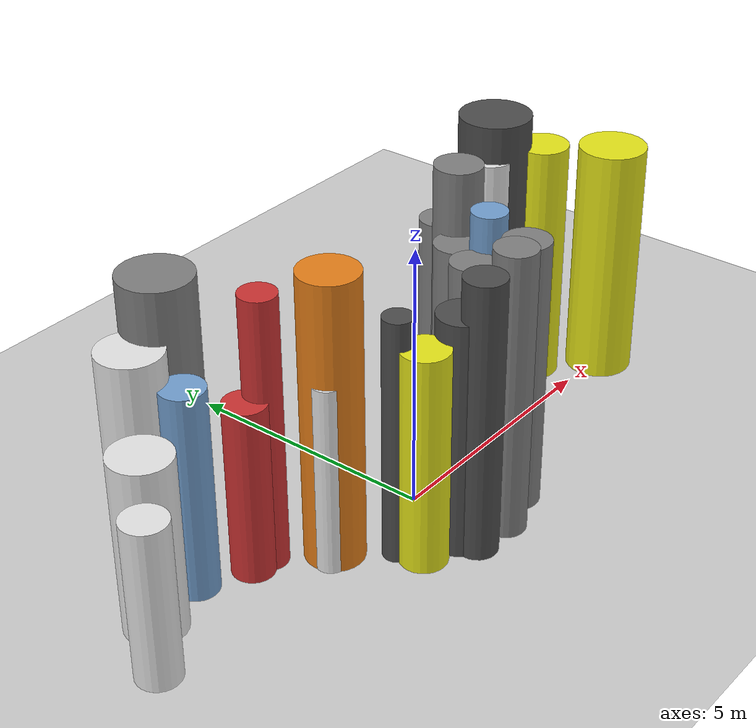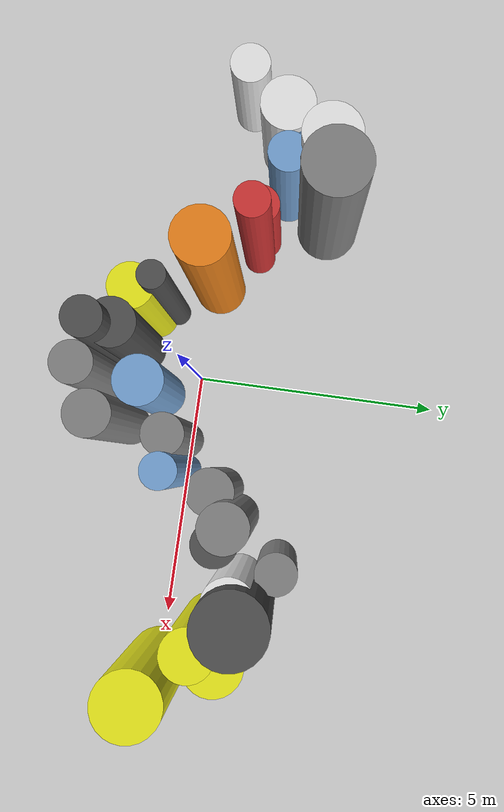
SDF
<?xml version='1.0'?>
<sdf version='1.6'>
  <world name='routeA_rl_v1__dense_recovery__rl_test__s_turn_multi_obstacle__000119'>
    <!-- Sun light -->
    <light name='sun' type='directional'>
      <cast_shadows>1</cast_shadows>
      <pose>0 0 10 0 0 0</pose>
      <diffuse>0.8 0.8 0.8 1</diffuse>
      <specular>0.2 0.2 0.2 1</specular>
      <attenuation>
        <range>1000</range>
        <constant>0.9</constant>
        <linear>0.01</linear>
        <quadratic>0.001</quadratic>
      </attenuation>
      <direction>-0.5 0.1 -0.9</direction>
    </light>

    <!-- Ground plane -->
    <model name='ground_plane'>
      <static>1</static>
      <link name='link'>
        <collision name='collision'>
          <geometry>
            <plane>
              <normal>0 0 1</normal>
              <size>100 100</size>
            </plane>
          </geometry>
          <surface>
            <contact>
              <collide_bitmask>65535</collide_bitmask>
              <ode/>
            </contact>
            <friction>
              <ode>
                <mu>100</mu>
                <mu2>50</mu2>
              </ode>
              <torsional><ode/></torsional>
            </friction>
            <bounce/>
          </surface>
          <max_contacts>10</max_contacts>
        </collision>
        <visual name='visual'>
          <cast_shadows>0</cast_shadows>
          <geometry>
            <plane>
              <normal>0 0 1</normal>
              <size>100 100</size>
            </plane>
          </geometry>
          <material>
            <script>
              <uri>file://media/materials/scripts/gazebo.material</uri>
              <n>Gazebo/Grey</n>
            </script>
          </material>
        </visual>
      </link>
    </model>

    <!-- Environment -->
    <magnetic_field>6e-06 2.3e-05 -4.2e-05</magnetic_field>
    <atmosphere type='adiabatic'/>
    <physics name='default_physics' default='0' type='ode'>
      <gravity>0 0 -9.8</gravity>
      <max_step_size>0.004</max_step_size>
      <real_time_factor>1</real_time_factor>
      <real_time_update_rate>250</real_time_update_rate>
    </physics>
    <scene>
      <ambient>0.4 0.4 0.4 1</ambient>
      <background>0.7 0.7 0.7 1</background>
      <shadows>1</shadows>
    </scene>
    <wind/>
    <spherical_coordinates>
      <surface_model>EARTH_WGS84</surface_model>
      <latitude_deg>0</latitude_deg>
      <longitude_deg>0</longitude_deg>
      <elevation>0</elevation>
      <heading_deg>0</heading_deg>
    </spherical_coordinates>

    <!-- ============ OBSTACLES (28) ============ -->
    <model name='s_turn_obs_0'>
      <static>1</static>
      <link name='link'>
        <visual name='visual'>
          <geometry>
            <cylinder>
              <radius>0.3976</radius>
              <length>3.0006</length>
            </cylinder>
          </geometry>
          <material>
            <script>
              <n>Gazebo/White</n>
              <uri>file://media/materials/scripts/gazebo.material</uri>
            </script>
            <ambient>0.9 0.9 0.9 1</ambient>
          </material>
        </visual>
        <collision name='collision'>
          <geometry>
            <cylinder>
              <radius>0.3976</radius>
              <length>3.0006</length>
            </cylinder>
          </geometry>
          <max_contacts>10</max_contacts>
          <surface>
            <contact><ode/></contact>
            <bounce/>
            <friction>
              <ode><mu>1</mu><mu2>1</mu2></ode>
              <torsional><ode/></torsional>
            </friction>
          </surface>
        </collision>
      </link>
      <pose>-6.0000 0.3360 1.5003 0 0 0.0000</pose>
    </model>

    <model name='s_turn_obs_1'>
      <static>1</static>
      <link name='link'>
        <visual name='visual'>
          <geometry>
            <cylinder>
              <radius>0.5451</radius>
              <length>3.3310</length>
            </cylinder>
          </geometry>
          <material>
            <script>
              <n>Gazebo/White</n>
              <uri>file://media/materials/scripts/gazebo.material</uri>
            </script>
            <ambient>0.9 0.9 0.9 1</ambient>
          </material>
        </visual>
        <collision name='collision'>
          <geometry>
            <cylinder>
              <radius>0.5451</radius>
              <length>3.3310</length>
            </cylinder>
          </geometry>
          <max_contacts>10</max_contacts>
          <surface>
            <contact><ode/></contact>
            <bounce/>
            <friction>
              <ode><mu>1</mu><mu2>1</mu2></ode>
              <torsional><ode/></torsional>
            </friction>
          </surface>
        </collision>
      </link>
      <pose>-5.2000 1.1918 1.6655 0 0 0.0000</pose>
    </model>

    <model name='s_turn_obs_2'>
      <static>1</static>
      <link name='link'>
        <visual name='visual'>
          <geometry>
            <cylinder>
              <radius>0.5701</radius>
              <length>4.4364</length>
            </cylinder>
          </geometry>
          <material>
            <script>
              <n>Gazebo/White</n>
              <uri>file://media/materials/scripts/gazebo.material</uri>
            </script>
            <ambient>0.9 0.9 0.9 1</ambient>
          </material>
        </visual>
        <collision name='collision'>
          <geometry>
            <cylinder>
              <radius>0.5701</radius>
              <length>4.4364</length>
            </cylinder>
          </geometry>
          <max_contacts>10</max_contacts>
          <surface>
            <contact><ode/></contact>
            <bounce/>
            <friction>
              <ode><mu>1</mu><mu2>1</mu2></ode>
              <torsional><ode/></torsional>
            </friction>
          </surface>
        </collision>
      </link>
      <pose>-4.4000 2.1085 2.2182 0 0 0.0000</pose>
    </model>

    <model name='s_turn_obs_3'>
      <static>1</static>
      <link name='link'>
        <visual name='visual'>
          <geometry>
            <cylinder>
              <radius>0.6428</radius>
              <length>5.3717</length>
            </cylinder>
          </geometry>
          <material>
            <script>
              <n>Gazebo/Grey</n>
              <uri>file://media/materials/scripts/gazebo.material</uri>
            </script>
            <ambient>0.5 0.5 0.5 1</ambient>
          </material>
        </visual>
        <collision name='collision'>
          <geometry>
            <cylinder>
              <radius>0.6428</radius>
              <length>5.3717</length>
            </cylinder>
          </geometry>
          <max_contacts>10</max_contacts>
          <surface>
            <contact><ode/></contact>
            <bounce/>
            <friction>
              <ode><mu>1</mu><mu2>1</mu2></ode>
              <torsional><ode/></torsional>
            </friction>
          </surface>
        </collision>
      </link>
      <pose>-3.6000 2.2613 2.6859 0 0 0.0000</pose>
    </model>

    <model name='s_turn_obs_4'>
      <static>1</static>
      <link name='link'>
        <visual name='visual'>
          <geometry>
            <cylinder>
              <radius>0.3293</radius>
              <length>5.1544</length>
            </cylinder>
          </geometry>
          <material>
            <script>
              <n>Gazebo/Red</n>
              <uri>file://media/materials/scripts/gazebo.material</uri>
            </script>
            <ambient>0.8 0.2 0.2 1</ambient>
          </material>
        </visual>
        <collision name='collision'>
          <geometry>
            <cylinder>
              <radius>0.3293</radius>
              <length>5.1544</length>
            </cylinder>
          </geometry>
          <max_contacts>10</max_contacts>
          <surface>
            <contact><ode/></contact>
            <bounce/>
            <friction>
              <ode><mu>1</mu><mu2>1</mu2></ode>
              <torsional><ode/></torsional>
            </friction>
          </surface>
        </collision>
      </link>
      <pose>-2.8000 0.8919 2.5772 0 0 0.0000</pose>
    </model>

    <model name='s_turn_obs_5'>
      <static>1</static>
      <link name='link'>
        <visual name='visual'>
          <geometry>
            <cylinder>
              <radius>0.5351</radius>
              <length>5.4546</length>
            </cylinder>
          </geometry>
          <material>
            <script>
              <n>Gazebo/Orange</n>
              <uri>file://media/materials/scripts/gazebo.material</uri>
            </script>
            <ambient>0.9 0.5 0.1 1</ambient>
          </material>
        </visual>
        <collision name='collision'>
          <geometry>
            <cylinder>
              <radius>0.5351</radius>
              <length>5.4546</length>
            </cylinder>
          </geometry>
          <max_contacts>10</max_contacts>
          <surface>
            <contact><ode/></contact>
            <bounce/>
            <friction>
              <ode><mu>1</mu><mu2>1</mu2></ode>
              <torsional><ode/></torsional>
            </friction>
          </surface>
        </collision>
      </link>
      <pose>-2.0000 0.1380 2.7273 0 0 0.0000</pose>
    </model>

    <model name='s_turn_obs_6'>
      <static>1</static>
      <link name='link'>
        <visual name='visual'>
          <geometry>
            <cylinder>
              <radius>0.4342</radius>
              <length>4.1384</length>
            </cylinder>
          </geometry>
          <material>
            <script>
              <n>Gazebo/Yellow</n>
              <uri>file://media/materials/scripts/gazebo.material</uri>
            </script>
            <ambient>0.9 0.9 0.1 1</ambient>
          </material>
        </visual>
        <collision name='collision'>
          <geometry>
            <cylinder>
              <radius>0.4342</radius>
              <length>4.1384</length>
            </cylinder>
          </geometry>
          <max_contacts>10</max_contacts>
          <surface>
            <contact><ode/></contact>
            <bounce/>
            <friction>
              <ode><mu>1</mu><mu2>1</mu2></ode>
              <torsional><ode/></torsional>
            </friction>
          </surface>
        </collision>
      </link>
      <pose>-1.2000 -1.1291 2.0692 0 0 0.0000</pose>
    </model>

    <model name='s_turn_obs_7'>
      <static>1</static>
      <link name='link'>
        <visual name='visual'>
          <geometry>
            <cylinder>
              <radius>0.3707</radius>
              <length>5.2595</length>
            </cylinder>
          </geometry>
          <material>
            <script>
              <n>Gazebo/DarkGrey</n>
              <uri>file://media/materials/scripts/gazebo.material</uri>
            </script>
            <ambient>0.3 0.3 0.3 1</ambient>
          </material>
        </visual>
        <collision name='collision'>
          <geometry>
            <cylinder>
              <radius>0.3707</radius>
              <length>5.2595</length>
            </cylinder>
          </geometry>
          <max_contacts>10</max_contacts>
          <surface>
            <contact><ode/></contact>
            <bounce/>
            <friction>
              <ode><mu>1</mu><mu2>1</mu2></ode>
              <torsional><ode/></torsional>
            </friction>
          </surface>
        </collision>
      </link>
      <pose>-0.4000 -1.6710 2.6297 0 0 0.0000</pose>
    </model>

    <model name='s_turn_obs_8'>
      <static>1</static>
      <link name='link'>
        <visual name='visual'>
          <geometry>
            <cylinder>
              <radius>0.3790</radius>
              <length>5.4382</length>
            </cylinder>
          </geometry>
          <material>
            <script>
              <n>Gazebo/Grey</n>
              <uri>file://media/materials/scripts/gazebo.material</uri>
            </script>
            <ambient>0.5 0.5 0.5 1</ambient>
          </material>
        </visual>
        <collision name='collision'>
          <geometry>
            <cylinder>
              <radius>0.3790</radius>
              <length>5.4382</length>
            </cylinder>
          </geometry>
          <max_contacts>10</max_contacts>
          <surface>
            <contact><ode/></contact>
            <bounce/>
            <friction>
              <ode><mu>1</mu><mu2>1</mu2></ode>
              <torsional><ode/></torsional>
            </friction>
          </surface>
        </collision>
      </link>
      <pose>0.4000 -1.6871 2.7191 0 0 0.0000</pose>
    </model>

    <model name='s_turn_obs_9'>
      <static>1</static>
      <link name='link'>
        <visual name='visual'>
          <geometry>
            <cylinder>
              <radius>0.4232</radius>
              <length>5.1403</length>
            </cylinder>
          </geometry>
          <material>
            <script>
              <n>Gazebo/Grey</n>
              <uri>file://media/materials/scripts/gazebo.material</uri>
            </script>
            <ambient>0.5 0.5 0.5 1</ambient>
          </material>
        </visual>
        <collision name='collision'>
          <geometry>
            <cylinder>
              <radius>0.4232</radius>
              <length>5.1403</length>
            </cylinder>
          </geometry>
          <max_contacts>10</max_contacts>
          <surface>
            <contact><ode/></contact>
            <bounce/>
            <friction>
              <ode><mu>1</mu><mu2>1</mu2></ode>
              <torsional><ode/></torsional>
            </friction>
          </surface>
        </collision>
      </link>
      <pose>1.2000 -1.3632 2.5701 0 0 0.0000</pose>
    </model>

    <model name='s_turn_obs_10'>
      <static>1</static>
      <link name='link'>
        <visual name='visual'>
          <geometry>
            <cylinder>
              <radius>0.3324</radius>
              <length>4.9375</length>
            </cylinder>
          </geometry>
          <material>
            <script>
              <n>Gazebo/Blue</n>
              <uri>file://media/materials/scripts/gazebo.material</uri>
            </script>
            <ambient>0.447 0.624 0.812 1</ambient>
          </material>
        </visual>
        <collision name='collision'>
          <geometry>
            <cylinder>
              <radius>0.3324</radius>
              <length>4.9375</length>
            </cylinder>
          </geometry>
          <max_contacts>10</max_contacts>
          <surface>
            <contact><ode/></contact>
            <bounce/>
            <friction>
              <ode><mu>1</mu><mu2>1</mu2></ode>
              <torsional><ode/></torsional>
            </friction>
          </surface>
        </collision>
      </link>
      <pose>2.0000 -0.0542 2.4687 0 0 0.0000</pose>
    </model>

    <model name='s_turn_obs_11'>
      <static>1</static>
      <link name='link'>
        <visual name='visual'>
          <geometry>
            <cylinder>
              <radius>0.4575</radius>
              <length>5.1483</length>
            </cylinder>
          </geometry>
          <material>
            <script>
              <n>Gazebo/Grey</n>
              <uri>file://media/materials/scripts/gazebo.material</uri>
            </script>
            <ambient>0.5 0.5 0.5 1</ambient>
          </material>
        </visual>
        <collision name='collision'>
          <geometry>
            <cylinder>
              <radius>0.4575</radius>
              <length>5.1483</length>
            </cylinder>
          </geometry>
          <max_contacts>10</max_contacts>
          <surface>
            <contact><ode/></contact>
            <bounce/>
            <friction>
              <ode><mu>1</mu><mu2>1</mu2></ode>
              <torsional><ode/></torsional>
            </friction>
          </surface>
        </collision>
      </link>
      <pose>2.8000 1.1863 2.5742 0 0 0.0000</pose>
    </model>

    <model name='s_turn_obs_12'>
      <static>1</static>
      <link name='link'>
        <visual name='visual'>
          <geometry>
            <cylinder>
              <radius>0.4024</radius>
              <length>3.4681</length>
            </cylinder>
          </geometry>
          <material>
            <script>
              <n>Gazebo/Grey</n>
              <uri>file://media/materials/scripts/gazebo.material</uri>
            </script>
            <ambient>0.5 0.5 0.5 1</ambient>
          </material>
        </visual>
        <collision name='collision'>
          <geometry>
            <cylinder>
              <radius>0.4024</radius>
              <length>3.4681</length>
            </cylinder>
          </geometry>
          <max_contacts>10</max_contacts>
          <surface>
            <contact><ode/></contact>
            <bounce/>
            <friction>
              <ode><mu>1</mu><mu2>1</mu2></ode>
              <torsional><ode/></torsional>
            </friction>
          </surface>
        </collision>
      </link>
      <pose>3.6000 2.1660 1.7341 0 0 0.0000</pose>
    </model>

    <model name='s_turn_obs_13'>
      <static>1</static>
      <link name='link'>
        <visual name='visual'>
          <geometry>
            <cylinder>
              <radius>0.6827</radius>
              <length>5.4558</length>
            </cylinder>
          </geometry>
          <material>
            <script>
              <n>Gazebo/DarkGrey</n>
              <uri>file://media/materials/scripts/gazebo.material</uri>
            </script>
            <ambient>0.3 0.3 0.3 1</ambient>
          </material>
        </visual>
        <collision name='collision'>
          <geometry>
            <cylinder>
              <radius>0.6827</radius>
              <length>5.4558</length>
            </cylinder>
          </geometry>
          <max_contacts>10</max_contacts>
          <surface>
            <contact><ode/></contact>
            <bounce/>
            <friction>
              <ode><mu>1</mu><mu2>1</mu2></ode>
              <torsional><ode/></torsional>
            </friction>
          </surface>
        </collision>
      </link>
      <pose>4.4000 1.5330 2.7279 0 0 0.0000</pose>
    </model>

    <model name='s_turn_obs_14'>
      <static>1</static>
      <link name='link'>
        <visual name='visual'>
          <geometry>
            <cylinder>
              <radius>0.5463</radius>
              <length>4.4266</length>
            </cylinder>
          </geometry>
          <material>
            <script>
              <n>Gazebo/Yellow</n>
              <uri>file://media/materials/scripts/gazebo.material</uri>
            </script>
            <ambient>0.9 0.9 0.1 1</ambient>
          </material>
        </visual>
        <collision name='collision'>
          <geometry>
            <cylinder>
              <radius>0.5463</radius>
              <length>4.4266</length>
            </cylinder>
          </geometry>
          <max_contacts>10</max_contacts>
          <surface>
            <contact><ode/></contact>
            <bounce/>
            <friction>
              <ode><mu>1</mu><mu2>1</mu2></ode>
              <torsional><ode/></torsional>
            </friction>
          </surface>
        </collision>
      </link>
      <pose>5.2000 1.3021 2.2133 0 0 0.0000</pose>
    </model>

    <model name='s_turn_obs_15'>
      <static>1</static>
      <link name='link'>
        <visual name='visual'>
          <geometry>
            <cylinder>
              <radius>0.6408</radius>
              <length>4.6980</length>
            </cylinder>
          </geometry>
          <material>
            <script>
              <n>Gazebo/Yellow</n>
              <uri>file://media/materials/scripts/gazebo.material</uri>
            </script>
            <ambient>0.9 0.9 0.1 1</ambient>
          </material>
        </visual>
        <collision name='collision'>
          <geometry>
            <cylinder>
              <radius>0.6408</radius>
              <length>4.6980</length>
            </cylinder>
          </geometry>
          <max_contacts>10</max_contacts>
          <surface>
            <contact><ode/></contact>
            <bounce/>
            <friction>
              <ode><mu>1</mu><mu2>1</mu2></ode>
              <torsional><ode/></torsional>
            </friction>
          </surface>
        </collision>
      </link>
      <pose>6.0000 -0.0408 2.3490 0 0 0.0000</pose>
    </model>

    <model name='s_turn_obs2_0'>
      <static>1</static>
      <link name='link'>
        <visual name='visual'>
          <geometry>
            <cylinder>
              <radius>0.2966</radius>
              <length>3.0894</length>
            </cylinder>
          </geometry>
          <material>
            <script>
              <n>Gazebo/Blue</n>
              <uri>file://media/materials/scripts/gazebo.material</uri>
            </script>
            <ambient>0.447 0.624 0.812 1</ambient>
          </material>
        </visual>
        <collision name='collision'>
          <geometry>
            <cylinder>
              <radius>0.2966</radius>
              <length>3.0894</length>
            </cylinder>
          </geometry>
          <max_contacts>10</max_contacts>
          <surface>
            <contact><ode/></contact>
            <bounce/>
            <friction>
              <ode><mu>1</mu><mu2>1</mu2></ode>
              <torsional><ode/></torsional>
            </friction>
          </surface>
        </collision>
      </link>
      <pose>-5.0000 1.3667 1.5447 0 0 0.0000</pose>
    </model>

    <model name='s_turn_obs2_1'>
      <static>1</static>
      <link name='link'>
        <visual name='visual'>
          <geometry>
            <cylinder>
              <radius>0.3938</radius>
              <length>3.9047</length>
            </cylinder>
          </geometry>
          <material>
            <script>
              <n>Gazebo/Blue</n>
              <uri>file://media/materials/scripts/gazebo.material</uri>
            </script>
            <ambient>0.447 0.624 0.812 1</ambient>
          </material>
        </visual>
        <collision name='collision'>
          <geometry>
            <cylinder>
              <radius>0.3938</radius>
              <length>3.9047</length>
            </cylinder>
          </geometry>
          <max_contacts>10</max_contacts>
          <surface>
            <contact><ode/></contact>
            <bounce/>
            <friction>
              <ode><mu>1</mu><mu2>1</mu2></ode>
              <torsional><ode/></torsional>
            </friction>
          </surface>
        </collision>
      </link>
      <pose>-4.0909 1.3492 1.9524 0 0 0.0000</pose>
    </model>

    <model name='s_turn_obs2_2'>
      <static>1</static>
      <link name='link'>
        <visual name='visual'>
          <geometry>
            <cylinder>
              <radius>0.3838</radius>
              <length>3.3295</length>
            </cylinder>
          </geometry>
          <material>
            <script>
              <n>Gazebo/Red</n>
              <uri>file://media/materials/scripts/gazebo.material</uri>
            </script>
            <ambient>0.8 0.2 0.2 1</ambient>
          </material>
        </visual>
        <collision name='collision'>
          <geometry>
            <cylinder>
              <radius>0.3838</radius>
              <length>3.3295</length>
            </cylinder>
          </geometry>
          <max_contacts>10</max_contacts>
          <surface>
            <contact><ode/></contact>
            <bounce/>
            <friction>
              <ode><mu>1</mu><mu2>1</mu2></ode>
              <torsional><ode/></torsional>
            </friction>
          </surface>
        </collision>
      </link>
      <pose>-3.1818 0.9226 1.6647 0 0 0.0000</pose>
    </model>

    <model name='s_turn_obs2_3'>
      <static>1</static>
      <link name='link'>
        <visual name='visual'>
          <geometry>
            <cylinder>
              <radius>0.2751</radius>
              <length>3.5934</length>
            </cylinder>
          </geometry>
          <material>
            <script>
              <n>Gazebo/White</n>
              <uri>file://media/materials/scripts/gazebo.material</uri>
            </script>
            <ambient>0.9 0.9 0.9 1</ambient>
          </material>
        </visual>
        <collision name='collision'>
          <geometry>
            <cylinder>
              <radius>0.2751</radius>
              <length>3.5934</length>
            </cylinder>
          </geometry>
          <max_contacts>10</max_contacts>
          <surface>
            <contact><ode/></contact>
            <bounce/>
            <friction>
              <ode><mu>1</mu><mu2>1</mu2></ode>
              <torsional><ode/></torsional>
            </friction>
          </surface>
        </collision>
      </link>
      <pose>-2.2727 -0.0024 1.7967 0 0 0.0000</pose>
    </model>

    <model name='s_turn_obs2_4'>
      <static>1</static>
      <link name='link'>
        <visual name='visual'>
          <geometry>
            <cylinder>
              <radius>0.2684</radius>
              <length>4.6497</length>
            </cylinder>
          </geometry>
          <material>
            <script>
              <n>Gazebo/DarkGrey</n>
              <uri>file://media/materials/scripts/gazebo.material</uri>
            </script>
            <ambient>0.3 0.3 0.3 1</ambient>
          </material>
        </visual>
        <collision name='collision'>
          <geometry>
            <cylinder>
              <radius>0.2684</radius>
              <length>4.6497</length>
            </cylinder>
          </geometry>
          <max_contacts>10</max_contacts>
          <surface>
            <contact><ode/></contact>
            <bounce/>
            <friction>
              <ode><mu>1</mu><mu2>1</mu2></ode>
              <torsional><ode/></torsional>
            </friction>
          </surface>
        </collision>
      </link>
      <pose>-1.3636 -0.7071 2.3248 0 0 0.0000</pose>
    </model>

    <model name='s_turn_obs2_5'>
      <static>1</static>
      <link name='link'>
        <visual name='visual'>
          <geometry>
            <cylinder>
              <radius>0.4596</radius>
              <length>4.5114</length>
            </cylinder>
          </geometry>
          <material>
            <script>
              <n>Gazebo/DarkGrey</n>
              <uri>file://media/materials/scripts/gazebo.material</uri>
            </script>
            <ambient>0.3 0.3 0.3 1</ambient>
          </material>
        </visual>
        <collision name='collision'>
          <geometry>
            <cylinder>
              <radius>0.4596</radius>
              <length>4.5114</length>
            </cylinder>
          </geometry>
          <max_contacts>10</max_contacts>
          <surface>
            <contact><ode/></contact>
            <bounce/>
            <friction>
              <ode><mu>1</mu><mu2>1</mu2></ode>
              <torsional><ode/></torsional>
            </friction>
          </surface>
        </collision>
      </link>
      <pose>-0.4545 -1.3127 2.2557 0 0 0.0000</pose>
    </model>

    <model name='s_turn_obs2_6'>
      <static>1</static>
      <link name='link'>
        <visual name='visual'>
          <geometry>
            <cylinder>
              <radius>0.4787</radius>
              <length>3.9154</length>
            </cylinder>
          </geometry>
          <material>
            <script>
              <n>Gazebo/Blue</n>
              <uri>file://media/materials/scripts/gazebo.material</uri>
            </script>
            <ambient>0.447 0.624 0.812 1</ambient>
          </material>
        </visual>
        <collision name='collision'>
          <geometry>
            <cylinder>
              <radius>0.4787</radius>
              <length>3.9154</length>
            </cylinder>
          </geometry>
          <max_contacts>10</max_contacts>
          <surface>
            <contact><ode/></contact>
            <bounce/>
            <friction>
              <ode><mu>1</mu><mu2>1</mu2></ode>
              <torsional><ode/></torsional>
            </friction>
          </surface>
        </collision>
      </link>
      <pose>0.4545 -0.7790 1.9577 0 0 0.0000</pose>
    </model>

    <model name='s_turn_obs2_7'>
      <static>1</static>
      <link name='link'>
        <visual name='visual'>
          <geometry>
            <cylinder>
              <radius>0.3940</radius>
              <length>4.2702</length>
            </cylinder>
          </geometry>
          <material>
            <script>
              <n>Gazebo/Grey</n>
              <uri>file://media/materials/scripts/gazebo.material</uri>
            </script>
            <ambient>0.5 0.5 0.5 1</ambient>
          </material>
        </visual>
        <collision name='collision'>
          <geometry>
            <cylinder>
              <radius>0.3940</radius>
              <length>4.2702</length>
            </cylinder>
          </geometry>
          <max_contacts>10</max_contacts>
          <surface>
            <contact><ode/></contact>
            <bounce/>
            <friction>
              <ode><mu>1</mu><mu2>1</mu2></ode>
              <torsional><ode/></torsional>
            </friction>
          </surface>
        </collision>
      </link>
      <pose>1.3636 -0.1574 2.1351 0 0 0.0000</pose>
    </model>

    <model name='s_turn_obs2_8'>
      <static>1</static>
      <link name='link'>
        <visual name='visual'>
          <geometry>
            <cylinder>
              <radius>0.4450</radius>
              <length>3.9300</length>
            </cylinder>
          </geometry>
          <material>
            <script>
              <n>Gazebo/Grey</n>
              <uri>file://media/materials/scripts/gazebo.material</uri>
            </script>
            <ambient>0.5 0.5 0.5 1</ambient>
          </material>
        </visual>
        <collision name='collision'>
          <geometry>
            <cylinder>
              <radius>0.4450</radius>
              <length>3.9300</length>
            </cylinder>
          </geometry>
          <max_contacts>10</max_contacts>
          <surface>
            <contact><ode/></contact>
            <bounce/>
            <friction>
              <ode><mu>1</mu><mu2>1</mu2></ode>
              <torsional><ode/></torsional>
            </friction>
          </surface>
        </collision>
      </link>
      <pose>2.2727 0.7930 1.9650 0 0 0.0000</pose>
    </model>

    <model name='s_turn_obs2_9'>
      <static>1</static>
      <link name='link'>
        <visual name='visual'>
          <geometry>
            <cylinder>
              <radius>0.4309</radius>
              <length>3.9183</length>
            </cylinder>
          </geometry>
          <material>
            <script>
              <n>Gazebo/DarkGrey</n>
              <uri>file://media/materials/scripts/gazebo.material</uri>
            </script>
            <ambient>0.3 0.3 0.3 1</ambient>
          </material>
        </visual>
        <collision name='collision'>
          <geometry>
            <cylinder>
              <radius>0.4309</radius>
              <length>3.9183</length>
            </cylinder>
          </geometry>
          <max_contacts>10</max_contacts>
          <surface>
            <contact><ode/></contact>
            <bounce/>
            <friction>
              <ode><mu>1</mu><mu2>1</mu2></ode>
              <torsional><ode/></torsional>
            </friction>
          </surface>
        </collision>
      </link>
      <pose>3.1818 0.9975 1.9591 0 0 0.0000</pose>
    </model>

    <model name='s_turn_obs2_10'>
      <static>1</static>
      <link name='link'>
        <visual name='visual'>
          <geometry>
            <cylinder>
              <radius>0.4808</radius>
              <length>4.7500</length>
            </cylinder>
          </geometry>
          <material>
            <script>
              <n>Gazebo/White</n>
              <uri>file://media/materials/scripts/gazebo.material</uri>
            </script>
            <ambient>0.9 0.9 0.9 1</ambient>
          </material>
        </visual>
        <collision name='collision'>
          <geometry>
            <cylinder>
              <radius>0.4808</radius>
              <length>4.7500</length>
            </cylinder>
          </geometry>
          <max_contacts>10</max_contacts>
          <surface>
            <contact><ode/></contact>
            <bounce/>
            <friction>
              <ode><mu>1</mu><mu2>1</mu2></ode>
              <torsional><ode/></torsional>
            </friction>
          </surface>
        </collision>
      </link>
      <pose>4.0909 1.4228 2.3750 0 0 0.0000</pose>
    </model>

    <model name='s_turn_obs2_11'>
      <static>1</static>
      <link name='link'>
        <visual name='visual'>
          <geometry>
            <cylinder>
              <radius>0.4875</radius>
              <length>4.8374</length>
            </cylinder>
          </geometry>
          <material>
            <script>
              <n>Gazebo/Yellow</n>
              <uri>file://media/materials/scripts/gazebo.material</uri>
            </script>
            <ambient>0.9 0.9 0.1 1</ambient>
          </material>
        </visual>
        <collision name='collision'>
          <geometry>
            <cylinder>
              <radius>0.4875</radius>
              <length>4.8374</length>
            </cylinder>
          </geometry>
          <max_contacts>10</max_contacts>
          <surface>
            <contact><ode/></contact>
            <bounce/>
            <friction>
              <ode><mu>1</mu><mu2>1</mu2></ode>
              <torsional><ode/></torsional>
            </friction>
          </surface>
        </collision>
      </link>
      <pose>5.0000 0.8585 2.4187 0 0 0.0000</pose>
    </model>

    <!-- GUI camera -->
    <gui fullscreen='0'>
      <camera name='user_camera'>
        <pose>-15 0 18 0 0.85 0.15</pose>
        <view_controller>orbit</view_controller>
        <projection_type>perspective</projection_type>
      </camera>
    </gui>
  </world>
</sdf>
